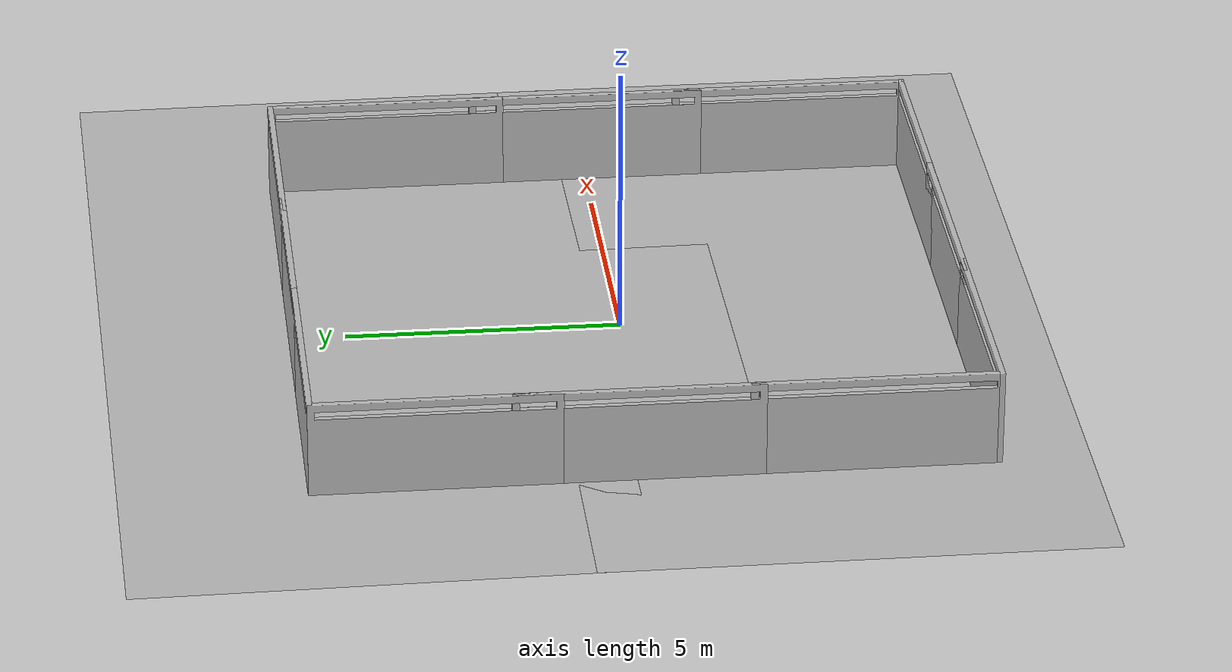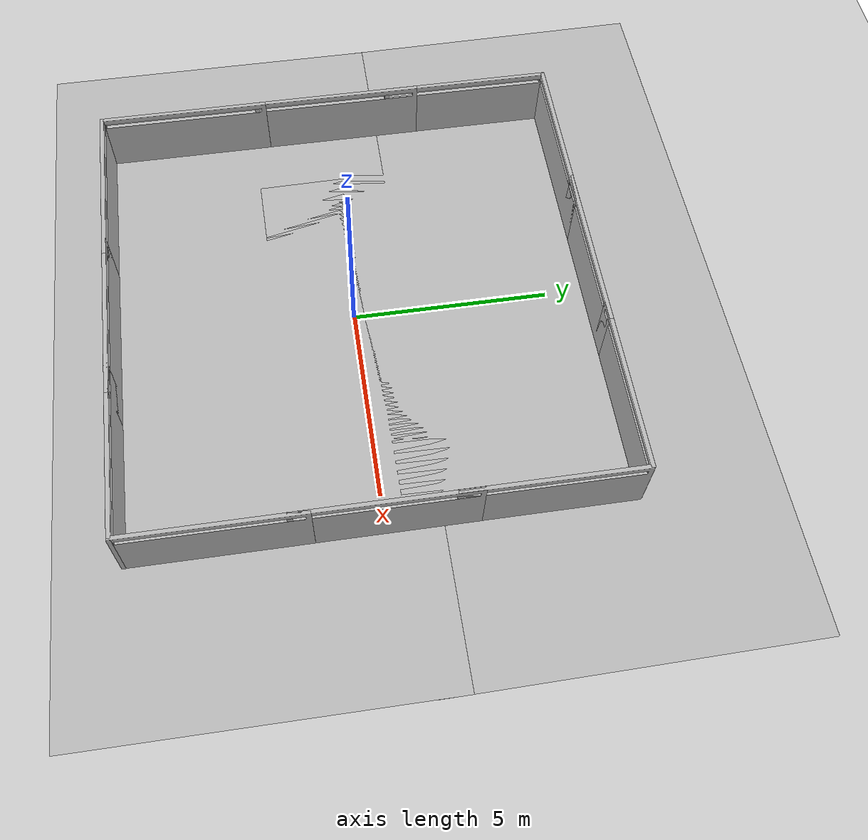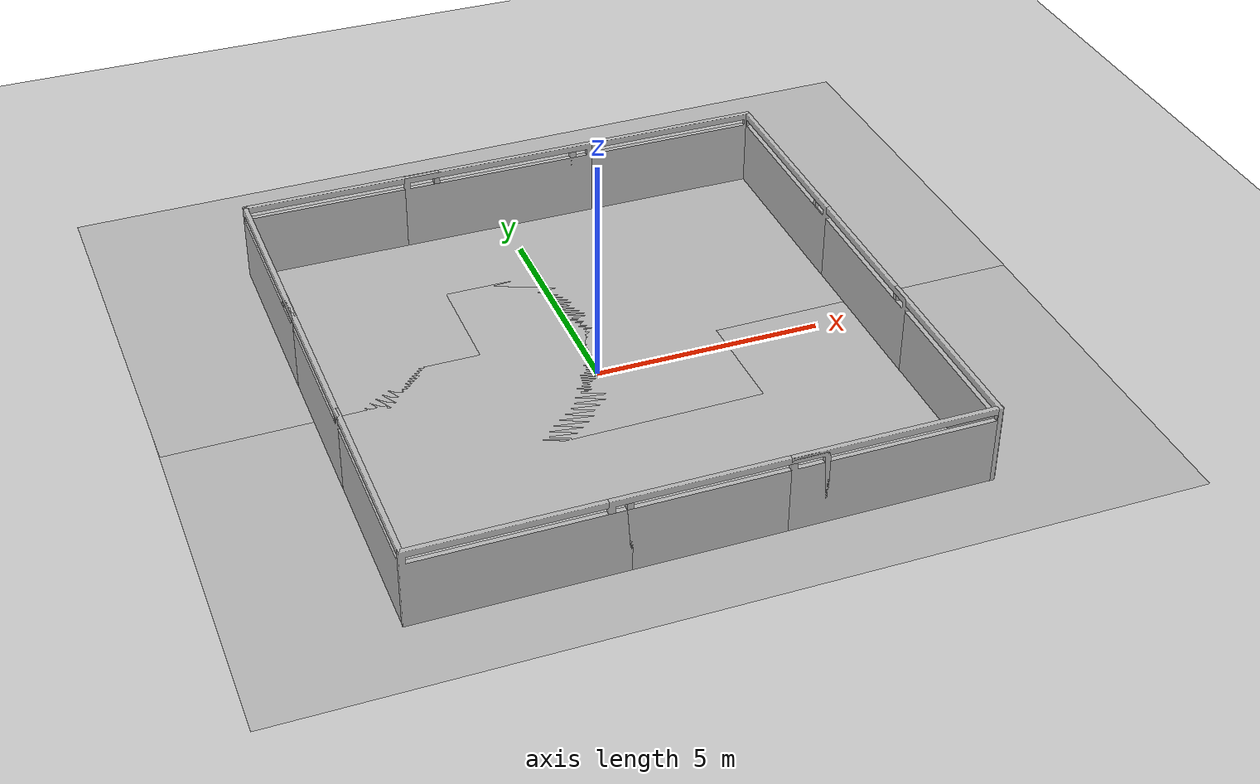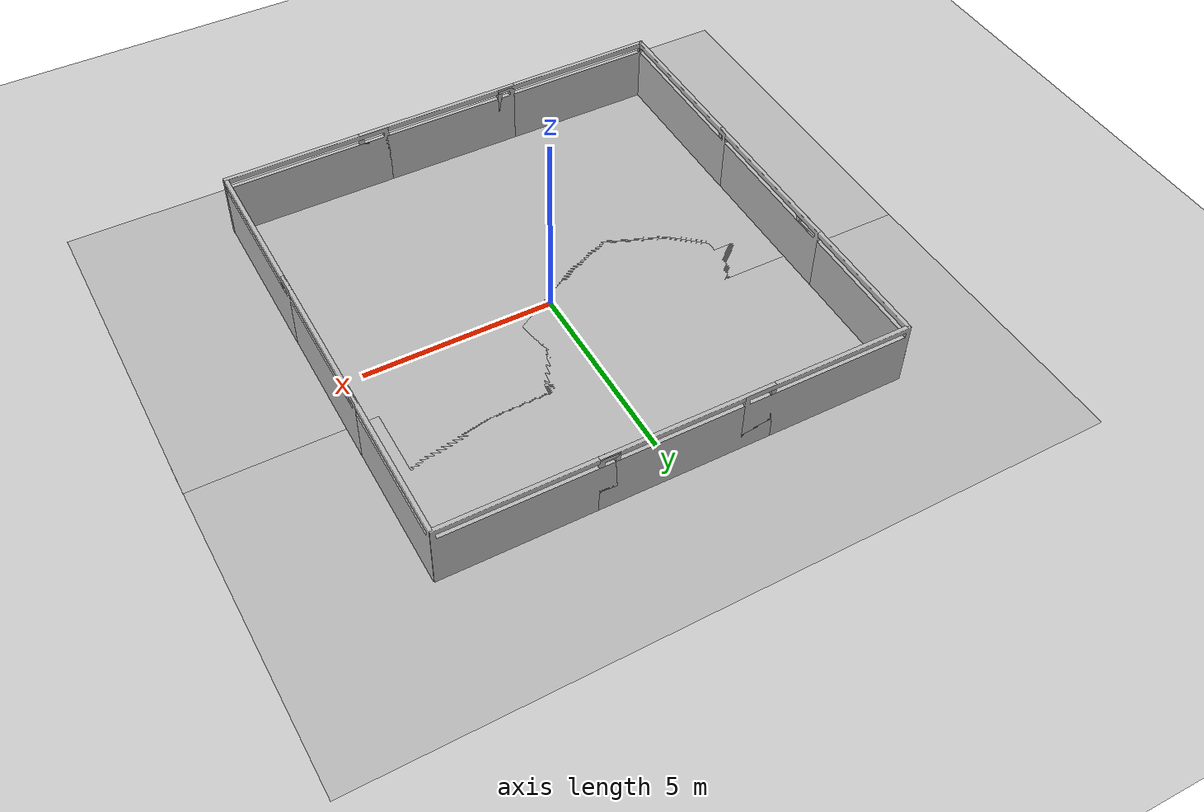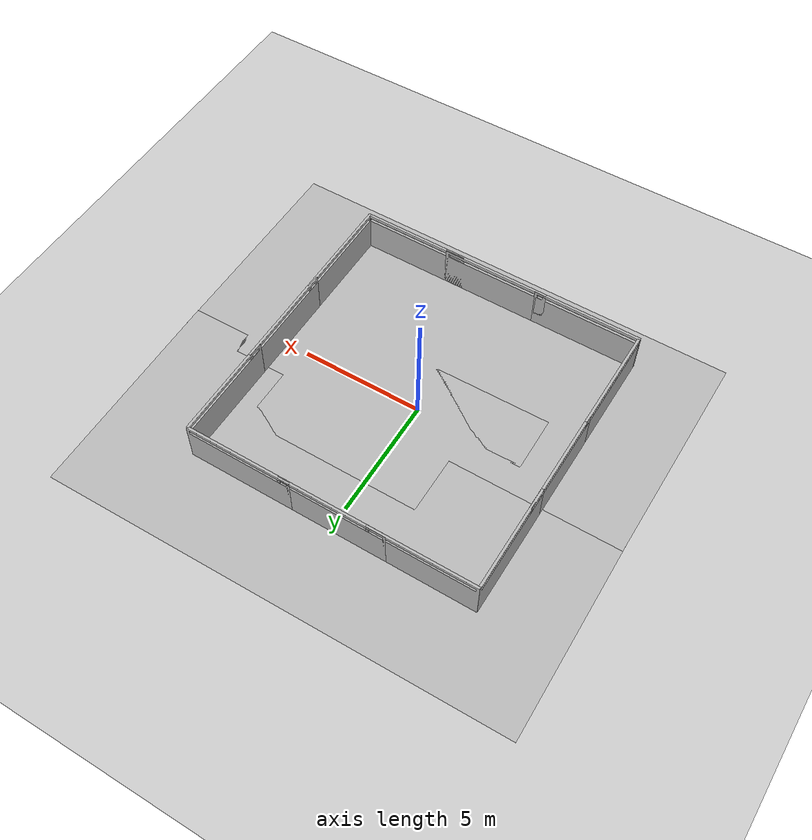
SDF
<sdf version="1.7">
 <world name="default">
  <light name="sun" type="directional">
   <pose>0 0 10 0 -0 0</pose>
   <diffuse>0.8 0.8 0.8 1</diffuse>
   <specular>0.2 0.2 0.2 1</specular>
   <attenuation>
    <range>1000</range>
    <constant>0.9</constant>
    <linear>0.01</linear>
    <quadratic>0.001</quadratic>
   </attenuation>
   <direction>-0.5 0.1 -0.9</direction>
   <spot><inner_angle>0</inner_angle><outer_angle>0</outer_angle><falloff>0</falloff></spot>
  </light>
  <model name="ground_plane">
   <static>1</static>
   <link name="link">
    <collision name="collision">
     <geometry><plane><normal>0 0 1</normal><size>100 100</size></plane></geometry>
     <surface><friction><ode><mu>100</mu><mu2>50</mu2></ode></friction></surface>
    </collision>
    <visual name="visual">
     <cast_shadows>0</cast_shadows>
     <geometry><plane><normal>0 0 1</normal><size>100 100</size></plane></geometry>
     <material>
      <script><uri>file://media/materials/scripts/gazebo.material</uri><name>Gazebo/Grey</name></script>
     </material>
    </visual>
   </link>
  </model>
  <gravity>0 0 -9.8</gravity>
  <magnetic_field>6e-06 2.3e-05 -4.2e-05</magnetic_field>
  <atmosphere type="adiabatic"/>
  <physics type="ode">
   <max_step_size>0.001</max_step_size>
   <real_time_factor>1</real_time_factor>
   <real_time_update_rate>1000</real_time_update_rate>
  </physics>
  <scene><ambient>0.4 0.4 0.4 1</ambient><background>0.7 0.7 0.7 1</background><shadows>1</shadows></scene>
  <spherical_coordinates>
   <surface_model>EARTH_WGS84</surface_model>
   <latitude_deg>0</latitude_deg>
   <longitude_deg>0</longitude_deg>
   <elevation>0</elevation>
   <heading_deg>0</heading_deg>
  </spherical_coordinates>
  <model name="aws_robomaker_residential_RoomWall_01">
   <link name="link">
    <inertial><mass>100</mass></inertial>
    <collision name="collision">
     <geometry>
      <mesh>
       <uri>model://aws_robomaker_residential_RoomWall_01/meshes/aws_RoomWall_01_collision.DAE</uri>
       <scale>1 1 1</scale>
      </mesh>
     </geometry>
    </collision>
    <visual name="visual">
     <geometry>
      <mesh><uri>model://aws_robomaker_residential_RoomWall_01/meshes/aws_RoomWall_01_visual.DAE</uri></mesh>
     </geometry>
     <meta><layer>2</layer></meta>
    </visual>
   </link>
   <static>1</static>
   <pose>0.16643 -6 0 0 -0 0</pose>
  </model>
  <model name="aws_robomaker_residential_RoomWall_01_clone">
   <link name="link">
    <inertial><mass>100</mass></inertial>
    <collision name="collision">
     <geometry>
      <mesh>
       <uri>model://aws_robomaker_residential_RoomWall_01/meshes/aws_RoomWall_01_collision.DAE</uri>
       <scale>1 1 1</scale>
      </mesh>
     </geometry>
    </collision>
    <visual name="visual">
     <geometry>
      <mesh><uri>model://aws_robomaker_residential_RoomWall_01/meshes/aws_RoomWall_01_visual.DAE</uri></mesh>
     </geometry>
     <meta><layer>2</layer></meta>
    </visual>
   </link>
   <static>1</static>
   <pose>-3.77908 -6 0 0 -0 0</pose>
  </model>
  <model name="aws_robomaker_residential_RoomWall_01_clone_clone">
   <link name="link">
    <inertial><mass>100</mass></inertial>
    <collision name="collision">
     <geometry>
      <mesh>
       <uri>model://aws_robomaker_residential_RoomWall_01/meshes/aws_RoomWall_01_collision.DAE</uri>
       <scale>1 1 1</scale>
      </mesh>
     </geometry>
    </collision>
    <visual name="visual">
     <geometry>
      <mesh><uri>model://aws_robomaker_residential_RoomWall_01/meshes/aws_RoomWall_01_visual.DAE</uri></mesh>
     </geometry>
     <meta><layer>2</layer></meta>
    </visual>
   </link>
   <static>1</static>
   <pose>3.78184 -6 0 0 -0 0</pose>
  </model>
  <model name="aws_robomaker_residential_RoomWall_01_clone_0">
   <link name="link">
    <inertial><mass>100</mass></inertial>
    <collision name="collision">
     <geometry>
      <mesh>
       <uri>model://aws_robomaker_residential_RoomWall_01/meshes/aws_RoomWall_01_collision.DAE</uri>
       <scale>1 1 1</scale>
      </mesh>
     </geometry>
    </collision>
    <visual name="visual">
     <geometry>
      <mesh><uri>model://aws_robomaker_residential_RoomWall_01/meshes/aws_RoomWall_01_visual.DAE</uri></mesh>
     </geometry>
     <meta><layer>2</layer></meta>
    </visual>
   </link>
   <static>1</static>
   <pose>-0.147922 6 0 0 -0 0</pose>
  </model>
  <model name="aws_robomaker_residential_RoomWall_01_clone_0_clone">
   <link name="link">
    <inertial><mass>100</mass></inertial>
    <collision name="collision">
     <geometry>
      <mesh>
       <uri>model://aws_robomaker_residential_RoomWall_01/meshes/aws_RoomWall_01_collision.DAE</uri>
       <scale>1 1 1</scale>
      </mesh>
     </geometry>
    </collision>
    <visual name="visual">
     <geometry>
      <mesh><uri>model://aws_robomaker_residential_RoomWall_01/meshes/aws_RoomWall_01_visual.DAE</uri></mesh>
     </geometry>
     <meta><layer>2</layer></meta>
    </visual>
   </link>
   <static>1</static>
   <pose>-3.76309 6 0 0 -0 0</pose>
  </model>
  <model name="aws_robomaker_residential_RoomWall_01_clone_0_clone_clone">
   <link name="link">
    <inertial><mass>100</mass></inertial>
    <collision name="collision">
     <geometry>
      <mesh>
       <uri>model://aws_robomaker_residential_RoomWall_01/meshes/aws_RoomWall_01_collision.DAE</uri>
       <scale>1 1 1</scale>
      </mesh>
     </geometry>
    </collision>
    <visual name="visual">
     <geometry>
      <mesh><uri>model://aws_robomaker_residential_RoomWall_01/meshes/aws_RoomWall_01_visual.DAE</uri></mesh>
     </geometry>
     <meta><layer>2</layer></meta>
    </visual>
   </link>
   <static>1</static>
   <pose>-5.93678 -3.83496 0 0 -0 1.57</pose>
  </model>
  <model name="aws_robomaker_residential_RoomWall_01_clone_0_clone_clone_clone">
   <link name="link">
    <inertial><mass>100</mass></inertial>
    <collision name="collision">
     <geometry>
      <mesh>
       <uri>model://aws_robomaker_residential_RoomWall_01/meshes/aws_RoomWall_01_collision.DAE</uri>
       <scale>1 1 1</scale>
      </mesh>
     </geometry>
    </collision>
    <visual name="visual">
     <geometry>
      <mesh><uri>model://aws_robomaker_residential_RoomWall_01/meshes/aws_RoomWall_01_visual.DAE</uri></mesh>
     </geometry>
     <meta><layer>2</layer></meta>
    </visual>
   </link>
   <static>1</static>
   <pose>-5.93678 0.301531 0 0 -0 1.57</pose>
  </model>
  <model name="aws_robomaker_residential_RoomWall_01_clone_0_clone_clone_clone_clone">
   <link name="link">
    <inertial><mass>100</mass></inertial>
    <collision name="collision">
     <geometry>
      <mesh>
       <uri>model://aws_robomaker_residential_RoomWall_01/meshes/aws_RoomWall_01_collision.DAE</uri>
       <scale>1 1 1</scale>
      </mesh>
     </geometry>
    </collision>
    <visual name="visual">
     <geometry>
      <mesh><uri>model://aws_robomaker_residential_RoomWall_01/meshes/aws_RoomWall_01_visual.DAE</uri></mesh>
     </geometry>
     <meta><layer>2</layer></meta>
    </visual>
   </link>
   <static>1</static>
   <pose>-5.93682 3.82912 0 0 -0 1.57</pose>
  </model>
  <model name="aws_robomaker_residential_RoomWall_01_clone_0_clone_clone_clone_0">
   <link name="link">
    <inertial><mass>100</mass></inertial>
    <collision name="collision">
     <geometry>
      <mesh>
       <uri>model://aws_robomaker_residential_RoomWall_01/meshes/aws_RoomWall_01_collision.DAE</uri>
       <scale>1 1 1</scale>
      </mesh>
     </geometry>
    </collision>
    <visual name="visual">
     <geometry>
      <mesh><uri>model://aws_robomaker_residential_RoomWall_01/meshes/aws_RoomWall_01_visual.DAE</uri></mesh>
     </geometry>
     <meta><layer>2</layer></meta>
    </visual>
   </link>
   <static>1</static>
   <pose>5.93678 -3.83987 0 0 -0 1.57</pose>
  </model>
  <model name="aws_robomaker_residential_RoomWall_01_clone_0_clone_clone_clone_0_clone">
   <link name="link">
    <inertial><mass>100</mass></inertial>
    <collision name="collision">
     <geometry>
      <mesh>
       <uri>model://aws_robomaker_residential_RoomWall_01/meshes/aws_RoomWall_01_collision.DAE</uri>
       <scale>1 1 1</scale>
      </mesh>
     </geometry>
    </collision>
    <visual name="visual">
     <geometry>
      <mesh><uri>model://aws_robomaker_residential_RoomWall_01/meshes/aws_RoomWall_01_visual.DAE</uri></mesh>
     </geometry>
     <meta><layer>2</layer></meta>
    </visual>
   </link>
   <static>1</static>
   <pose>5.93678 0.036992 0 0 -0 1.57</pose>
  </model>
  <model name="aws_robomaker_residential_RoomWall_01_clone_0_clone_clone_clone_0_clone_clone">
   <link name="link">
    <inertial><mass>100</mass></inertial>
    <collision name="collision">
     <geometry>
      <mesh>
       <uri>model://aws_robomaker_residential_RoomWall_01/meshes/aws_RoomWall_01_collision.DAE</uri>
       <scale>1 1 1</scale>
      </mesh>
     </geometry>
    </collision>
    <visual name="visual">
     <geometry>
      <mesh><uri>model://aws_robomaker_residential_RoomWall_01/meshes/aws_RoomWall_01_visual.DAE</uri></mesh>
     </geometry>
     <meta><layer>2</layer></meta>
    </visual>
   </link>
   <static>1</static>
   <pose>5.93666 3.81927 0 0 -0 1.57</pose>
  </model>
  <model name="aws_robomaker_residential_RoomWall_01_clone_0_clone_0">
   <link name="link">
    <inertial><mass>100</mass></inertial>
    <collision name="collision">
     <geometry>
      <mesh>
       <uri>model://aws_robomaker_residential_RoomWall_01/meshes/aws_RoomWall_01_collision.DAE</uri>
       <scale>1 1 1</scale>
      </mesh>
     </geometry>
    </collision>
    <visual name="visual">
     <geometry>
      <mesh><uri>model://aws_robomaker_residential_RoomWall_01/meshes/aws_RoomWall_01_visual.DAE</uri></mesh>
     </geometry>
     <meta><layer>2</layer></meta>
    </visual>
   </link>
   <static>1</static>
   <pose>3.76272 6 0 0 -0 0</pose>
  </model>
  <model name="aws_robomaker_residential_FloorB_01">
   <link name="link">
    <inertial><mass>100</mass></inertial>
    <collision name="collision">
     <geometry>
      <mesh>
       <uri>model://aws_robomaker_residential_FloorB_01/meshes/aws_FloorB_01_collision.DAE</uri>
       <scale>1 1 0.9</scale>
      </mesh>
     </geometry>
     <surface><friction><ode><mu>100</mu><mu2>50</mu2></ode></friction></surface>
    </collision>
    <visual name="visual">
     <geometry>
      <mesh><uri>model://aws_robomaker_residential_FloorB_01/meshes/aws_FloorB_01_visual.DAE</uri></mesh>
     </geometry>
     <meta><layer>1</layer></meta>
    </visual>
   </link>
   <static>1</static>
   <pose>0.360039 -1.92998 0.1 0 -0 0</pose>
  </model>
  <model name="aws_robomaker_residential_FloorB_01_clone">
   <link name="link">
    <inertial><mass>100</mass></inertial>
    <collision name="collision">
     <geometry>
      <mesh>
       <uri>model://aws_robomaker_residential_FloorB_01/meshes/aws_FloorB_01_collision.DAE</uri>
       <scale>1 1 0.9</scale>
      </mesh>
     </geometry>
     <surface><friction><ode><mu>100</mu><mu2>50</mu2></ode></friction></surface>
    </collision>
    <visual name="visual">
     <geometry>
      <mesh><uri>model://aws_robomaker_residential_FloorB_01/meshes/aws_FloorB_01_visual.DAE</uri></mesh>
     </geometry>
     <meta><layer>1</layer></meta>
    </visual>
   </link>
   <static>1</static>
   <pose>0.325544 3.72106 0.1 0 0 -3.12875</pose>
  </model>
 </world>
</sdf>
